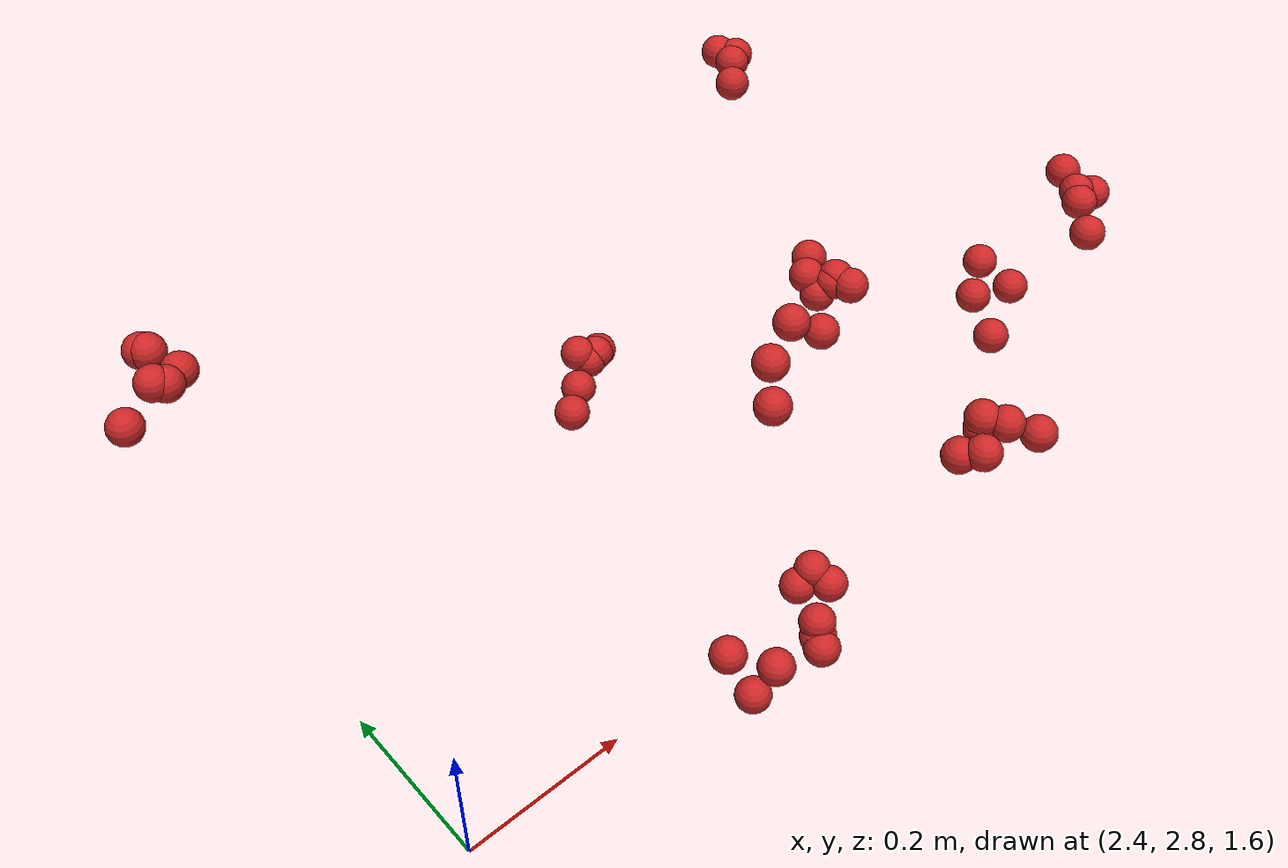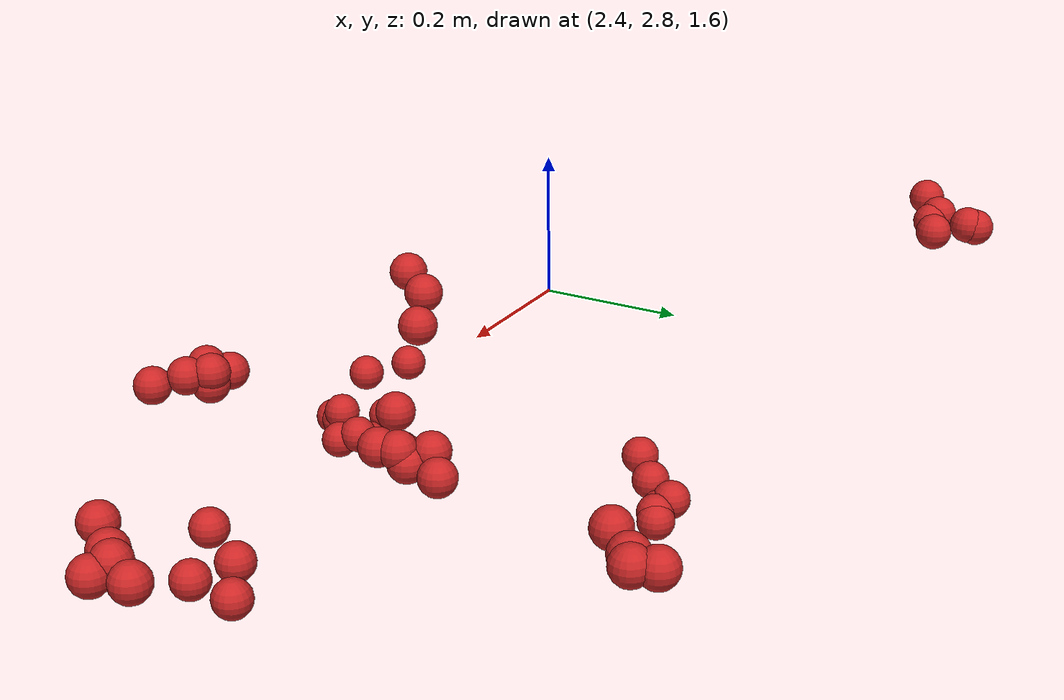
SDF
<sdf version="1.4">
 <model name="fruit_population">
  <static>true</static>
  <link name="fruit_10">
   <pose>2.9140144951566893 2.905246026582781 1.8241018806844693 0 0 0</pose>
   <collision name="fruit_collision_10"><geometry><sphere><radius>0.022</radius></sphere></geometry></collision>
   <visual name="visual">
    <geometry><sphere><radius>0.022</radius></sphere></geometry>
    <material><script><name>Gazebo/Red</name></script></material>
   </visual>
   <inertial>
    <mass>0.05</mass>
    <inertia>
     <ixx>9.679999999999999e-06</ixx>
     <ixy>0.0</ixy>
     <ixz>0.0</ixz>
     <iyy>9.679999999999999e-06</iyy>
     <iyz>0.0</iyz>
     <izz>9.679999999999999e-06</izz>
    </inertia>
   </inertial>
   <sensor name="fruit_contact_10" type="contact">
    <plugin name="contact_plugin_10" filename="libcontact_plugin.so"/>
    <contact><collision>fruit_collision_10</collision><topic>fruit_contact_topic_10</topic></contact>
   </sensor>
  </link>
  <link name="fruit_20">
   <pose>3.0898441492252546 3.0006726805404482 1.7376067044280123 0 0 0</pose>
   <collision name="fruit_collision_20"><geometry><sphere><radius>0.022</radius></sphere></geometry></collision>
   <visual name="visual">
    <geometry><sphere><radius>0.022</radius></sphere></geometry>
    <material><script><name>Gazebo/Red</name></script></material>
   </visual>
   <inertial>
    <mass>0.05</mass>
    <inertia>
     <ixx>9.679999999999999e-06</ixx>
     <ixy>0.0</ixy>
     <ixz>0.0</ixz>
     <iyy>9.679999999999999e-06</iyy>
     <iyz>0.0</iyz>
     <izz>9.679999999999999e-06</izz>
    </inertia>
   </inertial>
   <sensor name="fruit_contact_20" type="contact">
    <plugin name="contact_plugin_20" filename="libcontact_plugin.so"/>
    <contact><collision>fruit_collision_20</collision><topic>fruit_contact_topic_20</topic></contact>
   </sensor>
  </link>
  <link name="fruit_68">
   <pose>3.2950087017767102 2.900373768643816 1.665089980675513 0 0 0</pose>
   <collision name="fruit_collision_68"><geometry><sphere><radius>0.022</radius></sphere></geometry></collision>
   <visual name="visual">
    <geometry><sphere><radius>0.022</radius></sphere></geometry>
    <material><script><name>Gazebo/Red</name></script></material>
   </visual>
   <inertial>
    <mass>0.05</mass>
    <inertia>
     <ixx>9.679999999999999e-06</ixx>
     <ixy>0.0</ixy>
     <ixz>0.0</ixz>
     <iyy>9.679999999999999e-06</iyy>
     <iyz>0.0</iyz>
     <izz>9.679999999999999e-06</izz>
    </inertia>
   </inertial>
   <sensor name="fruit_contact_68" type="contact">
    <plugin name="contact_plugin_68" filename="libcontact_plugin.so"/>
    <contact><collision>fruit_collision_68</collision><topic>fruit_contact_topic_68</topic></contact>
   </sensor>
  </link>
  <link name="fruit_83">
   <pose>2.8420954201485804 3.175677228902239 1.6179164771805494 0 0 0</pose>
   <collision name="fruit_collision_83"><geometry><sphere><radius>0.022</radius></sphere></geometry></collision>
   <visual name="visual">
    <geometry><sphere><radius>0.022</radius></sphere></geometry>
    <material><script><name>Gazebo/Red</name></script></material>
   </visual>
   <inertial>
    <mass>0.05</mass>
    <inertia>
     <ixx>9.679999999999999e-06</ixx>
     <ixy>0.0</ixy>
     <ixz>0.0</ixz>
     <iyy>9.679999999999999e-06</iyy>
     <iyz>0.0</iyz>
     <izz>9.679999999999999e-06</izz>
    </inertia>
   </inertial>
   <sensor name="fruit_contact_83" type="contact">
    <plugin name="contact_plugin_83" filename="libcontact_plugin.so"/>
    <contact><collision>fruit_collision_83</collision><topic>fruit_contact_topic_83</topic></contact>
   </sensor>
  </link>
  <link name="fruit_107">
   <pose>3.4529257955766073 2.8977270658966408 1.7459621050404779 0 0 0</pose>
   <collision name="fruit_collision_107"><geometry><sphere><radius>0.022</radius></sphere></geometry></collision>
   <visual name="visual">
    <geometry><sphere><radius>0.022</radius></sphere></geometry>
    <material><script><name>Gazebo/Red</name></script></material>
   </visual>
   <inertial>
    <mass>0.05</mass>
    <inertia>
     <ixx>9.679999999999999e-06</ixx>
     <ixy>0.0</ixy>
     <ixz>0.0</ixz>
     <iyy>9.679999999999999e-06</iyy>
     <iyz>0.0</iyz>
     <izz>9.679999999999999e-06</izz>
    </inertia>
   </inertial>
   <sensor name="fruit_contact_107" type="contact">
    <plugin name="contact_plugin_107" filename="libcontact_plugin.so"/>
    <contact><collision>fruit_collision_107</collision><topic>fruit_contact_topic_107</topic></contact>
   </sensor>
  </link>
  <link name="fruit_133">
   <pose>2.362033435912725 3.3429292419735304 1.821196112609708 0 0 0</pose>
   <collision name="fruit_collision_133"><geometry><sphere><radius>0.022</radius></sphere></geometry></collision>
   <visual name="visual">
    <geometry><sphere><radius>0.022</radius></sphere></geometry>
    <material><script><name>Gazebo/Red</name></script></material>
   </visual>
   <inertial>
    <mass>0.05</mass>
    <inertia>
     <ixx>9.679999999999999e-06</ixx>
     <ixy>0.0</ixy>
     <ixz>0.0</ixz>
     <iyy>9.679999999999999e-06</iyy>
     <iyz>0.0</iyz>
     <izz>9.679999999999999e-06</izz>
    </inertia>
   </inertial>
   <sensor name="fruit_contact_133" type="contact">
    <plugin name="contact_plugin_133" filename="libcontact_plugin.so"/>
    <contact><collision>fruit_collision_133</collision><topic>fruit_contact_topic_133</topic></contact>
   </sensor>
  </link>
  <link name="fruit_156">
   <pose>3.2790294465330088 3.3693549721379656 1.7799801298312665 0 0 0</pose>
   <collision name="fruit_collision_156"><geometry><sphere><radius>0.022</radius></sphere></geometry></collision>
   <visual name="visual">
    <geometry><sphere><radius>0.022</radius></sphere></geometry>
    <material><script><name>Gazebo/Red</name></script></material>
   </visual>
   <inertial>
    <mass>0.05</mass>
    <inertia>
     <ixx>9.679999999999999e-06</ixx>
     <ixy>0.0</ixy>
     <ixz>0.0</ixz>
     <iyy>9.679999999999999e-06</iyy>
     <iyz>0.0</iyz>
     <izz>9.679999999999999e-06</izz>
    </inertia>
   </inertial>
   <sensor name="fruit_contact_156" type="contact">
    <plugin name="contact_plugin_156" filename="libcontact_plugin.so"/>
    <contact><collision>fruit_collision_156</collision><topic>fruit_contact_topic_156</topic></contact>
   </sensor>
  </link>
  <link name="fruit_200">
   <pose>3.080797771087424 2.7665304108855397 1.732512972001943 0 0 0</pose>
   <collision name="fruit_collision_200"><geometry><sphere><radius>0.022</radius></sphere></geometry></collision>
   <visual name="visual">
    <geometry><sphere><radius>0.022</radius></sphere></geometry>
    <material><script><name>Gazebo/Red</name></script></material>
   </visual>
   <inertial>
    <mass>0.05</mass>
    <inertia>
     <ixx>9.679999999999999e-06</ixx>
     <ixy>0.0</ixy>
     <ixz>0.0</ixz>
     <iyy>9.679999999999999e-06</iyy>
     <iyz>0.0</iyz>
     <izz>9.679999999999999e-06</izz>
    </inertia>
   </inertial>
   <sensor name="fruit_contact_200" type="contact">
    <plugin name="contact_plugin_200" filename="libcontact_plugin.so"/>
    <contact><collision>fruit_collision_200</collision><topic>fruit_contact_topic_200</topic></contact>
   </sensor>
  </link>
  <link name="fruit_205">
   <pose>2.935476633555447 3.243234836119311 1.6022618831357802 0 0 0</pose>
   <collision name="fruit_collision_205"><geometry><sphere><radius>0.022</radius></sphere></geometry></collision>
   <visual name="visual">
    <geometry><sphere><radius>0.022</radius></sphere></geometry>
    <material><script><name>Gazebo/Red</name></script></material>
   </visual>
   <inertial>
    <mass>0.05</mass>
    <inertia>
     <ixx>9.679999999999999e-06</ixx>
     <ixy>0.0</ixy>
     <ixz>0.0</ixz>
     <iyy>9.679999999999999e-06</iyy>
     <iyz>0.0</iyz>
     <izz>9.679999999999999e-06</izz>
    </inertia>
   </inertial>
   <sensor name="fruit_contact_205" type="contact">
    <plugin name="contact_plugin_205" filename="libcontact_plugin.so"/>
    <contact><collision>fruit_collision_205</collision><topic>fruit_contact_topic_205</topic></contact>
   </sensor>
  </link>
  <link name="fruit_211">
   <pose>3.127967739637561 2.7779609332926394 1.7514853156689896 0 0 0</pose>
   <collision name="fruit_collision_211"><geometry><sphere><radius>0.022</radius></sphere></geometry></collision>
   <visual name="visual">
    <geometry><sphere><radius>0.022</radius></sphere></geometry>
    <material><script><name>Gazebo/Red</name></script></material>
   </visual>
   <inertial>
    <mass>0.05</mass>
    <inertia>
     <ixx>9.679999999999999e-06</ixx>
     <ixy>0.0</ixy>
     <ixz>0.0</ixz>
     <iyy>9.679999999999999e-06</iyy>
     <iyz>0.0</iyz>
     <izz>9.679999999999999e-06</izz>
    </inertia>
   </inertial>
   <sensor name="fruit_contact_211" type="contact">
    <plugin name="contact_plugin_211" filename="libcontact_plugin.so"/>
    <contact><collision>fruit_collision_211</collision><topic>fruit_contact_topic_211</topic></contact>
   </sensor>
  </link>
  <link name="fruit_214">
   <pose>2.452603941493797 3.3853979938809085 1.8100742727380073 0 0 0</pose>
   <collision name="fruit_collision_214"><geometry><sphere><radius>0.022</radius></sphere></geometry></collision>
   <visual name="visual">
    <geometry><sphere><radius>0.022</radius></sphere></geometry>
    <material><script><name>Gazebo/Red</name></script></material>
   </visual>
   <inertial>
    <mass>0.05</mass>
    <inertia>
     <ixx>9.679999999999999e-06</ixx>
     <ixy>0.0</ixy>
     <ixz>0.0</ixz>
     <iyy>9.679999999999999e-06</iyy>
     <iyz>0.0</iyz>
     <izz>9.679999999999999e-06</izz>
    </inertia>
   </inertial>
   <sensor name="fruit_contact_214" type="contact">
    <plugin name="contact_plugin_214" filename="libcontact_plugin.so"/>
    <contact><collision>fruit_collision_214</collision><topic>fruit_contact_topic_214</topic></contact>
   </sensor>
  </link>
  <link name="fruit_232">
   <pose>3.1758163642686963 3.109713180910813 1.7216191462952584 0 0 0</pose>
   <collision name="fruit_collision_232"><geometry><sphere><radius>0.022</radius></sphere></geometry></collision>
   <visual name="visual">
    <geometry><sphere><radius>0.022</radius></sphere></geometry>
    <material><script><name>Gazebo/Red</name></script></material>
   </visual>
   <inertial>
    <mass>0.05</mass>
    <inertia>
     <ixx>9.679999999999999e-06</ixx>
     <ixy>0.0</ixy>
     <ixz>0.0</ixz>
     <iyy>9.679999999999999e-06</iyy>
     <iyz>0.0</iyz>
     <izz>9.679999999999999e-06</izz>
    </inertia>
   </inertial>
   <sensor name="fruit_contact_232" type="contact">
    <plugin name="contact_plugin_232" filename="libcontact_plugin.so"/>
    <contact><collision>fruit_collision_232</collision><topic>fruit_contact_topic_232</topic></contact>
   </sensor>
  </link>
  <link name="fruit_233">
   <pose>3.5211194494637494 2.995443114675061 1.740234323698659 0 0 0</pose>
   <collision name="fruit_collision_233"><geometry><sphere><radius>0.022</radius></sphere></geometry></collision>
   <visual name="visual">
    <geometry><sphere><radius>0.022</radius></sphere></geometry>
    <material><script><name>Gazebo/Red</name></script></material>
   </visual>
   <inertial>
    <mass>0.05</mass>
    <inertia>
     <ixx>9.679999999999999e-06</ixx>
     <ixy>0.0</ixy>
     <ixz>0.0</ixz>
     <iyy>9.679999999999999e-06</iyy>
     <iyz>0.0</iyz>
     <izz>9.679999999999999e-06</izz>
    </inertia>
   </inertial>
   <sensor name="fruit_contact_233" type="contact">
    <plugin name="contact_plugin_233" filename="libcontact_plugin.so"/>
    <contact><collision>fruit_collision_233</collision><topic>fruit_contact_topic_233</topic></contact>
   </sensor>
  </link>
  <link name="fruit_236">
   <pose>3.144479487791867 3.082540602792172 1.7323389013804935 0 0 0</pose>
   <collision name="fruit_collision_236"><geometry><sphere><radius>0.022</radius></sphere></geometry></collision>
   <visual name="visual">
    <geometry><sphere><radius>0.022</radius></sphere></geometry>
    <material><script><name>Gazebo/Red</name></script></material>
   </visual>
   <inertial>
    <mass>0.05</mass>
    <inertia>
     <ixx>9.679999999999999e-06</ixx>
     <ixy>0.0</ixy>
     <ixz>0.0</ixz>
     <iyy>9.679999999999999e-06</iyy>
     <iyz>0.0</iyz>
     <izz>9.679999999999999e-06</izz>
    </inertia>
   </inertial>
   <sensor name="fruit_contact_236" type="contact">
    <plugin name="contact_plugin_236" filename="libcontact_plugin.so"/>
    <contact><collision>fruit_collision_236</collision><topic>fruit_contact_topic_236</topic></contact>
   </sensor>
  </link>
  <link name="fruit_237">
   <pose>3.143146770329025 3.060728649599986 1.7179057275547984 0 0 0</pose>
   <collision name="fruit_collision_237"><geometry><sphere><radius>0.022</radius></sphere></geometry></collision>
   <visual name="visual">
    <geometry><sphere><radius>0.022</radius></sphere></geometry>
    <material><script><name>Gazebo/Red</name></script></material>
   </visual>
   <inertial>
    <mass>0.05</mass>
    <inertia>
     <ixx>9.679999999999999e-06</ixx>
     <ixy>0.0</ixy>
     <ixz>0.0</ixz>
     <iyy>9.679999999999999e-06</iyy>
     <iyz>0.0</iyz>
     <izz>9.679999999999999e-06</izz>
    </inertia>
   </inertial>
   <sensor name="fruit_contact_237" type="contact">
    <plugin name="contact_plugin_237" filename="libcontact_plugin.so"/>
    <contact><collision>fruit_collision_237</collision><topic>fruit_contact_topic_237</topic></contact>
   </sensor>
  </link>
  <link name="fruit_280">
   <pose>3.170629525966341 3.032256327298769 1.736465565389224 0 0 0</pose>
   <collision name="fruit_collision_280"><geometry><sphere><radius>0.022</radius></sphere></geometry></collision>
   <visual name="visual">
    <geometry><sphere><radius>0.022</radius></sphere></geometry>
    <material><script><name>Gazebo/Red</name></script></material>
   </visual>
   <inertial>
    <mass>0.05</mass>
    <inertia>
     <ixx>9.679999999999999e-06</ixx>
     <ixy>0.0</ixy>
     <ixz>0.0</ixz>
     <iyy>9.679999999999999e-06</iyy>
     <iyz>0.0</iyz>
     <izz>9.679999999999999e-06</izz>
    </inertia>
   </inertial>
   <sensor name="fruit_contact_280" type="contact">
    <plugin name="contact_plugin_280" filename="libcontact_plugin.so"/>
    <contact><collision>fruit_collision_280</collision><topic>fruit_contact_topic_280</topic></contact>
   </sensor>
  </link>
  <link name="fruit_306">
   <pose>3.022553675807514 2.9887041576275637 1.8122762410525313 0 0 0</pose>
   <collision name="fruit_collision_306"><geometry><sphere><radius>0.022</radius></sphere></geometry></collision>
   <visual name="visual">
    <geometry><sphere><radius>0.022</radius></sphere></geometry>
    <material><script><name>Gazebo/Red</name></script></material>
   </visual>
   <inertial>
    <mass>0.05</mass>
    <inertia>
     <ixx>9.679999999999999e-06</ixx>
     <ixy>0.0</ixy>
     <ixz>0.0</ixz>
     <iyy>9.679999999999999e-06</iyy>
     <iyz>0.0</iyz>
     <izz>9.679999999999999e-06</izz>
    </inertia>
   </inertial>
   <sensor name="fruit_contact_306" type="contact">
    <plugin name="contact_plugin_306" filename="libcontact_plugin.so"/>
    <contact><collision>fruit_collision_306</collision><topic>fruit_contact_topic_306</topic></contact>
   </sensor>
  </link>
  <link name="fruit_308">
   <pose>2.7534349780688596 2.7909564387254813 1.621023957650253 0 0 0</pose>
   <collision name="fruit_collision_308"><geometry><sphere><radius>0.022</radius></sphere></geometry></collision>
   <visual name="visual">
    <geometry><sphere><radius>0.022</radius></sphere></geometry>
    <material><script><name>Gazebo/Red</name></script></material>
   </visual>
   <inertial>
    <mass>0.05</mass>
    <inertia>
     <ixx>9.679999999999999e-06</ixx>
     <ixy>0.0</ixy>
     <ixz>0.0</ixz>
     <iyy>9.679999999999999e-06</iyy>
     <iyz>0.0</iyz>
     <izz>9.679999999999999e-06</izz>
    </inertia>
   </inertial>
   <sensor name="fruit_contact_308" type="contact">
    <plugin name="contact_plugin_308" filename="libcontact_plugin.so"/>
    <contact><collision>fruit_collision_308</collision><topic>fruit_contact_topic_308</topic></contact>
   </sensor>
  </link>
  <link name="fruit_321">
   <pose>2.956694126129255 2.953865894454527 1.8217331375314074 0 0 0</pose>
   <collision name="fruit_collision_321"><geometry><sphere><radius>0.022</radius></sphere></geometry></collision>
   <visual name="visual">
    <geometry><sphere><radius>0.022</radius></sphere></geometry>
    <material><script><name>Gazebo/Red</name></script></material>
   </visual>
   <inertial>
    <mass>0.05</mass>
    <inertia>
     <ixx>9.679999999999999e-06</ixx>
     <ixy>0.0</ixy>
     <ixz>0.0</ixz>
     <iyy>9.679999999999999e-06</iyy>
     <iyz>0.0</iyz>
     <izz>9.679999999999999e-06</izz>
    </inertia>
   </inertial>
   <sensor name="fruit_contact_321" type="contact">
    <plugin name="contact_plugin_321" filename="libcontact_plugin.so"/>
    <contact><collision>fruit_collision_321</collision><topic>fruit_contact_topic_321</topic></contact>
   </sensor>
  </link>
  <link name="fruit_327">
   <pose>3.097351917559545 2.7464701360229613 1.742855501991092 0 0 0</pose>
   <collision name="fruit_collision_327"><geometry><sphere><radius>0.022</radius></sphere></geometry></collision>
   <visual name="visual">
    <geometry><sphere><radius>0.022</radius></sphere></geometry>
    <material><script><name>Gazebo/Red</name></script></material>
   </visual>
   <inertial>
    <mass>0.05</mass>
    <inertia>
     <ixx>9.679999999999999e-06</ixx>
     <ixy>0.0</ixy>
     <ixz>0.0</ixz>
     <iyy>9.679999999999999e-06</iyy>
     <iyz>0.0</iyz>
     <izz>9.679999999999999e-06</izz>
    </inertia>
   </inertial>
   <sensor name="fruit_contact_327" type="contact">
    <plugin name="contact_plugin_327" filename="libcontact_plugin.so"/>
    <contact><collision>fruit_collision_327</collision><topic>fruit_contact_topic_327</topic></contact>
   </sensor>
  </link>
  <link name="fruit_375">
   <pose>2.872079595285109 2.768113470854476 1.5947824265434352 0 0 0</pose>
   <collision name="fruit_collision_375"><geometry><sphere><radius>0.022</radius></sphere></geometry></collision>
   <visual name="visual">
    <geometry><sphere><radius>0.022</radius></sphere></geometry>
    <material><script><name>Gazebo/Red</name></script></material>
   </visual>
   <inertial>
    <mass>0.05</mass>
    <inertia>
     <ixx>9.679999999999999e-06</ixx>
     <ixy>0.0</ixy>
     <ixz>0.0</ixz>
     <iyy>9.679999999999999e-06</iyy>
     <iyz>0.0</iyz>
     <izz>9.679999999999999e-06</izz>
    </inertia>
   </inertial>
   <sensor name="fruit_contact_375" type="contact">
    <plugin name="contact_plugin_375" filename="libcontact_plugin.so"/>
    <contact><collision>fruit_collision_375</collision><topic>fruit_contact_topic_375</topic></contact>
   </sensor>
  </link>
  <link name="fruit_378">
   <pose>2.8664320339020177 2.75936660708452 1.5799028151731846 0 0 0</pose>
   <collision name="fruit_collision_378"><geometry><sphere><radius>0.022</radius></sphere></geometry></collision>
   <visual name="visual">
    <geometry><sphere><radius>0.022</radius></sphere></geometry>
    <material><script><name>Gazebo/Red</name></script></material>
   </visual>
   <inertial>
    <mass>0.05</mass>
    <inertia>
     <ixx>9.679999999999999e-06</ixx>
     <ixy>0.0</ixy>
     <ixz>0.0</ixz>
     <iyy>9.679999999999999e-06</iyy>
     <iyz>0.0</iyz>
     <izz>9.679999999999999e-06</izz>
    </inertia>
   </inertial>
   <sensor name="fruit_contact_378" type="contact">
    <plugin name="contact_plugin_378" filename="libcontact_plugin.so"/>
    <contact><collision>fruit_collision_378</collision><topic>fruit_contact_topic_378</topic></contact>
   </sensor>
  </link>
  <link name="fruit_397">
   <pose>3.144407266936085 2.755585762841308 1.7487255881485326 0 0 0</pose>
   <collision name="fruit_collision_397"><geometry><sphere><radius>0.022</radius></sphere></geometry></collision>
   <visual name="visual">
    <geometry><sphere><radius>0.022</radius></sphere></geometry>
    <material><script><name>Gazebo/Red</name></script></material>
   </visual>
   <inertial>
    <mass>0.05</mass>
    <inertia>
     <ixx>9.679999999999999e-06</ixx>
     <ixy>0.0</ixy>
     <ixz>0.0</ixz>
     <iyy>9.679999999999999e-06</iyy>
     <iyz>0.0</iyz>
     <izz>9.679999999999999e-06</izz>
    </inertia>
   </inertial>
   <sensor name="fruit_contact_397" type="contact">
    <plugin name="contact_plugin_397" filename="libcontact_plugin.so"/>
    <contact><collision>fruit_collision_397</collision><topic>fruit_contact_topic_397</topic></contact>
   </sensor>
  </link>
  <link name="fruit_408">
   <pose>3.489133133854417 2.941618307858034 1.7444405958733205 0 0 0</pose>
   <collision name="fruit_collision_408"><geometry><sphere><radius>0.022</radius></sphere></geometry></collision>
   <visual name="visual">
    <geometry><sphere><radius>0.022</radius></sphere></geometry>
    <material><script><name>Gazebo/Red</name></script></material>
   </visual>
   <inertial>
    <mass>0.05</mass>
    <inertia>
     <ixx>9.679999999999999e-06</ixx>
     <ixy>0.0</ixy>
     <ixz>0.0</ixz>
     <iyy>9.679999999999999e-06</iyy>
     <iyz>0.0</iyz>
     <izz>9.679999999999999e-06</izz>
    </inertia>
   </inertial>
   <sensor name="fruit_contact_408" type="contact">
    <plugin name="contact_plugin_408" filename="libcontact_plugin.so"/>
    <contact><collision>fruit_collision_408</collision><topic>fruit_contact_topic_408</topic></contact>
   </sensor>
  </link>
  <link name="fruit_416">
   <pose>3.333135017560095 2.964121209680803 1.6602616928980347 0 0 0</pose>
   <collision name="fruit_collision_416"><geometry><sphere><radius>0.022</radius></sphere></geometry></collision>
   <visual name="visual">
    <geometry><sphere><radius>0.022</radius></sphere></geometry>
    <material><script><name>Gazebo/Red</name></script></material>
   </visual>
   <inertial>
    <mass>0.05</mass>
    <inertia>
     <ixx>9.679999999999999e-06</ixx>
     <ixy>0.0</ixy>
     <ixz>0.0</ixz>
     <iyy>9.679999999999999e-06</iyy>
     <iyz>0.0</iyz>
     <izz>9.679999999999999e-06</izz>
    </inertia>
   </inertial>
   <sensor name="fruit_contact_416" type="contact">
    <plugin name="contact_plugin_416" filename="libcontact_plugin.so"/>
    <contact><collision>fruit_collision_416</collision><topic>fruit_contact_topic_416</topic></contact>
   </sensor>
  </link>
  <link name="fruit_436">
   <pose>3.523450206589684 2.9475278973495804 1.735066649042872 0 0 0</pose>
   <collision name="fruit_collision_436"><geometry><sphere><radius>0.022</radius></sphere></geometry></collision>
   <visual name="visual">
    <geometry><sphere><radius>0.022</radius></sphere></geometry>
    <material><script><name>Gazebo/Red</name></script></material>
   </visual>
   <inertial>
    <mass>0.05</mass>
    <inertia>
     <ixx>9.679999999999999e-06</ixx>
     <ixy>0.0</ixy>
     <ixz>0.0</ixz>
     <iyy>9.679999999999999e-06</iyy>
     <iyz>0.0</iyz>
     <izz>9.679999999999999e-06</izz>
    </inertia>
   </inertial>
   <sensor name="fruit_contact_436" type="contact">
    <plugin name="contact_plugin_436" filename="libcontact_plugin.so"/>
    <contact><collision>fruit_collision_436</collision><topic>fruit_contact_topic_436</topic></contact>
   </sensor>
  </link>
  <link name="fruit_450">
   <pose>3.1604262928111524 3.0543891871822684 1.7319900647928577 0 0 0</pose>
   <collision name="fruit_collision_450"><geometry><sphere><radius>0.022</radius></sphere></geometry></collision>
   <visual name="visual">
    <geometry><sphere><radius>0.022</radius></sphere></geometry>
    <material><script><name>Gazebo/Red</name></script></material>
   </visual>
   <inertial>
    <mass>0.05</mass>
    <inertia>
     <ixx>9.679999999999999e-06</ixx>
     <ixy>0.0</ixy>
     <ixz>0.0</ixz>
     <iyy>9.679999999999999e-06</iyy>
     <iyz>0.0</iyz>
     <izz>9.679999999999999e-06</izz>
    </inertia>
   </inertial>
   <sensor name="fruit_contact_450" type="contact">
    <plugin name="contact_plugin_450" filename="libcontact_plugin.so"/>
    <contact><collision>fruit_collision_450</collision><topic>fruit_contact_topic_450</topic></contact>
   </sensor>
  </link>
  <link name="fruit_465">
   <pose>2.943962347466262 3.2481813957935524 1.5971211233583762 0 0 0</pose>
   <collision name="fruit_collision_465"><geometry><sphere><radius>0.022</radius></sphere></geometry></collision>
   <visual name="visual">
    <geometry><sphere><radius>0.022</radius></sphere></geometry>
    <material><script><name>Gazebo/Red</name></script></material>
   </visual>
   <inertial>
    <mass>0.05</mass>
    <inertia>
     <ixx>9.679999999999999e-06</ixx>
     <ixy>0.0</ixy>
     <ixz>0.0</ixz>
     <iyy>9.679999999999999e-06</iyy>
     <iyz>0.0</iyz>
     <izz>9.679999999999999e-06</izz>
    </inertia>
   </inertial>
   <sensor name="fruit_contact_465" type="contact">
    <plugin name="contact_plugin_465" filename="libcontact_plugin.so"/>
    <contact><collision>fruit_collision_465</collision><topic>fruit_contact_topic_465</topic></contact>
   </sensor>
  </link>
  <link name="fruit_493">
   <pose>2.436826860747151 3.4235387227265375 1.820561861365577 0 0 0</pose>
   <collision name="fruit_collision_493"><geometry><sphere><radius>0.022</radius></sphere></geometry></collision>
   <visual name="visual">
    <geometry><sphere><radius>0.022</radius></sphere></geometry>
    <material><script><name>Gazebo/Red</name></script></material>
   </visual>
   <inertial>
    <mass>0.05</mass>
    <inertia>
     <ixx>9.679999999999999e-06</ixx>
     <ixy>0.0</ixy>
     <ixz>0.0</ixz>
     <iyy>9.679999999999999e-06</iyy>
     <iyz>0.0</iyz>
     <izz>9.679999999999999e-06</izz>
    </inertia>
   </inertial>
   <sensor name="fruit_contact_493" type="contact">
    <plugin name="contact_plugin_493" filename="libcontact_plugin.so"/>
    <contact><collision>fruit_collision_493</collision><topic>fruit_contact_topic_493</topic></contact>
   </sensor>
  </link>
  <link name="fruit_519">
   <pose>2.4169803516048805 3.3784261323374833 1.8210627502552188 0 0 0</pose>
   <collision name="fruit_collision_519"><geometry><sphere><radius>0.022</radius></sphere></geometry></collision>
   <visual name="visual">
    <geometry><sphere><radius>0.022</radius></sphere></geometry>
    <material><script><name>Gazebo/Red</name></script></material>
   </visual>
   <inertial>
    <mass>0.05</mass>
    <inertia>
     <ixx>9.679999999999999e-06</ixx>
     <ixy>0.0</ixy>
     <ixz>0.0</ixz>
     <iyy>9.679999999999999e-06</iyy>
     <iyz>0.0</iyz>
     <izz>9.679999999999999e-06</izz>
    </inertia>
   </inertial>
   <sensor name="fruit_contact_519" type="contact">
    <plugin name="contact_plugin_519" filename="libcontact_plugin.so"/>
    <contact><collision>fruit_collision_519</collision><topic>fruit_contact_topic_519</topic></contact>
   </sensor>
  </link>
  <link name="fruit_521">
   <pose>3.126378667570813 2.775048888563298 1.7357082406921056 0 0 0</pose>
   <collision name="fruit_collision_521"><geometry><sphere><radius>0.022</radius></sphere></geometry></collision>
   <visual name="visual">
    <geometry><sphere><radius>0.022</radius></sphere></geometry>
    <material><script><name>Gazebo/Red</name></script></material>
   </visual>
   <inertial>
    <mass>0.05</mass>
    <inertia>
     <ixx>9.679999999999999e-06</ixx>
     <ixy>0.0</ixy>
     <ixz>0.0</ixz>
     <iyy>9.679999999999999e-06</iyy>
     <iyz>0.0</iyz>
     <izz>9.679999999999999e-06</izz>
    </inertia>
   </inertial>
   <sensor name="fruit_contact_521" type="contact">
    <plugin name="contact_plugin_521" filename="libcontact_plugin.so"/>
    <contact><collision>fruit_collision_521</collision><topic>fruit_contact_topic_521</topic></contact>
   </sensor>
  </link>
  <link name="fruit_524">
   <pose>2.859635976650725 2.746072186243088 1.578221911984925 0 0 0</pose>
   <collision name="fruit_collision_524"><geometry><sphere><radius>0.022</radius></sphere></geometry></collision>
   <visual name="visual">
    <geometry><sphere><radius>0.022</radius></sphere></geometry>
    <material><script><name>Gazebo/Red</name></script></material>
   </visual>
   <inertial>
    <mass>0.05</mass>
    <inertia>
     <ixx>9.679999999999999e-06</ixx>
     <ixy>0.0</ixy>
     <ixz>0.0</ixz>
     <iyy>9.679999999999999e-06</iyy>
     <iyz>0.0</iyz>
     <izz>9.679999999999999e-06</izz>
    </inertia>
   </inertial>
   <sensor name="fruit_contact_524" type="contact">
    <plugin name="contact_plugin_524" filename="libcontact_plugin.so"/>
    <contact><collision>fruit_collision_524</collision><topic>fruit_contact_topic_524</topic></contact>
   </sensor>
  </link>
  <link name="fruit_526">
   <pose>2.7714955847132354 2.76452379184572 1.5480833213641638 0 0 0</pose>
   <collision name="fruit_collision_526"><geometry><sphere><radius>0.022</radius></sphere></geometry></collision>
   <visual name="visual">
    <geometry><sphere><radius>0.022</radius></sphere></geometry>
    <material><script><name>Gazebo/Red</name></script></material>
   </visual>
   <inertial>
    <mass>0.05</mass>
    <inertia>
     <ixx>9.679999999999999e-06</ixx>
     <ixy>0.0</ixy>
     <ixz>0.0</ixz>
     <iyy>9.679999999999999e-06</iyy>
     <iyz>0.0</iyz>
     <izz>9.679999999999999e-06</izz>
    </inertia>
   </inertial>
   <sensor name="fruit_contact_526" type="contact">
    <plugin name="contact_plugin_526" filename="libcontact_plugin.so"/>
    <contact><collision>fruit_collision_526</collision><topic>fruit_contact_topic_526</topic></contact>
   </sensor>
  </link>
  <link name="fruit_559">
   <pose>2.9242054195398617 2.8005928820195587 1.5854405308502653 0 0 0</pose>
   <collision name="fruit_collision_559"><geometry><sphere><radius>0.022</radius></sphere></geometry></collision>
   <visual name="visual">
    <geometry><sphere><radius>0.022</radius></sphere></geometry>
    <material><script><name>Gazebo/Red</name></script></material>
   </visual>
   <inertial>
    <mass>0.05</mass>
    <inertia>
     <ixx>9.679999999999999e-06</ixx>
     <ixy>0.0</ixy>
     <ixz>0.0</ixz>
     <iyy>9.679999999999999e-06</iyy>
     <iyz>0.0</iyz>
     <izz>9.679999999999999e-06</izz>
    </inertia>
   </inertial>
   <sensor name="fruit_contact_559" type="contact">
    <plugin name="contact_plugin_559" filename="libcontact_plugin.so"/>
    <contact><collision>fruit_collision_559</collision><topic>fruit_contact_topic_559</topic></contact>
   </sensor>
  </link>
  <link name="fruit_599">
   <pose>2.432247606772274 3.431991065784248 1.8175553913017461 0 0 0</pose>
   <collision name="fruit_collision_599"><geometry><sphere><radius>0.022</radius></sphere></geometry></collision>
   <visual name="visual">
    <geometry><sphere><radius>0.022</radius></sphere></geometry>
    <material><script><name>Gazebo/Red</name></script></material>
   </visual>
   <inertial>
    <mass>0.05</mass>
    <inertia>
     <ixx>9.679999999999999e-06</ixx>
     <ixy>0.0</ixy>
     <ixz>0.0</ixz>
     <iyy>9.679999999999999e-06</iyy>
     <iyz>0.0</iyz>
     <izz>9.679999999999999e-06</izz>
    </inertia>
   </inertial>
   <sensor name="fruit_contact_599" type="contact">
    <plugin name="contact_plugin_599" filename="libcontact_plugin.so"/>
    <contact><collision>fruit_collision_599</collision><topic>fruit_contact_topic_599</topic></contact>
   </sensor>
  </link>
  <link name="fruit_600">
   <pose>3.3821384292120165 2.9451210794788643 1.65869887762032 0 0 0</pose>
   <collision name="fruit_collision_600"><geometry><sphere><radius>0.022</radius></sphere></geometry></collision>
   <visual name="visual">
    <geometry><sphere><radius>0.022</radius></sphere></geometry>
    <material><script><name>Gazebo/Red</name></script></material>
   </visual>
   <inertial>
    <mass>0.05</mass>
    <inertia>
     <ixx>9.679999999999999e-06</ixx>
     <ixy>0.0</ixy>
     <ixz>0.0</ixz>
     <iyy>9.679999999999999e-06</iyy>
     <iyz>0.0</iyz>
     <izz>9.679999999999999e-06</izz>
    </inertia>
   </inertial>
   <sensor name="fruit_contact_600" type="contact">
    <plugin name="contact_plugin_600" filename="libcontact_plugin.so"/>
    <contact><collision>fruit_collision_600</collision><topic>fruit_contact_topic_600</topic></contact>
   </sensor>
  </link>
  <link name="fruit_606">
   <pose>2.788085882455335 2.7486262109516812 1.611263935629812 0 0 0</pose>
   <collision name="fruit_collision_606"><geometry><sphere><radius>0.022</radius></sphere></geometry></collision>
   <visual name="visual">
    <geometry><sphere><radius>0.022</radius></sphere></geometry>
    <material><script><name>Gazebo/Red</name></script></material>
   </visual>
   <inertial>
    <mass>0.05</mass>
    <inertia>
     <ixx>9.679999999999999e-06</ixx>
     <ixy>0.0</ixy>
     <ixz>0.0</ixz>
     <iyy>9.679999999999999e-06</iyy>
     <iyz>0.0</iyz>
     <izz>9.679999999999999e-06</izz>
    </inertia>
   </inertial>
   <sensor name="fruit_contact_606" type="contact">
    <plugin name="contact_plugin_606" filename="libcontact_plugin.so"/>
    <contact><collision>fruit_collision_606</collision><topic>fruit_contact_topic_606</topic></contact>
   </sensor>
  </link>
  <link name="fruit_622">
   <pose>2.8780570741378346 3.20774451766001 1.6094567559574107 0 0 0</pose>
   <collision name="fruit_collision_622"><geometry><sphere><radius>0.022</radius></sphere></geometry></collision>
   <visual name="visual">
    <geometry><sphere><radius>0.022</radius></sphere></geometry>
    <material><script><name>Gazebo/Red</name></script></material>
   </visual>
   <inertial>
    <mass>0.05</mass>
    <inertia>
     <ixx>9.679999999999999e-06</ixx>
     <ixy>0.0</ixy>
     <ixz>0.0</ixz>
     <iyy>9.679999999999999e-06</iyy>
     <iyz>0.0</iyz>
     <izz>9.679999999999999e-06</izz>
    </inertia>
   </inertial>
   <sensor name="fruit_contact_622" type="contact">
    <plugin name="contact_plugin_622" filename="libcontact_plugin.so"/>
    <contact><collision>fruit_collision_622</collision><topic>fruit_contact_topic_622</topic></contact>
   </sensor>
  </link>
  <link name="fruit_643">
   <pose>2.9179417578138267 2.8240964145229612 1.5954560930940072 0 0 0</pose>
   <collision name="fruit_collision_643"><geometry><sphere><radius>0.022</radius></sphere></geometry></collision>
   <visual name="visual">
    <geometry><sphere><radius>0.022</radius></sphere></geometry>
    <material><script><name>Gazebo/Red</name></script></material>
   </visual>
   <inertial>
    <mass>0.05</mass>
    <inertia>
     <ixx>9.679999999999999e-06</ixx>
     <ixy>0.0</ixy>
     <ixz>0.0</ixz>
     <iyy>9.679999999999999e-06</iyy>
     <iyz>0.0</iyz>
     <izz>9.679999999999999e-06</izz>
    </inertia>
   </inertial>
   <sensor name="fruit_contact_643" type="contact">
    <plugin name="contact_plugin_643" filename="libcontact_plugin.so"/>
    <contact><collision>fruit_collision_643</collision><topic>fruit_contact_topic_643</topic></contact>
   </sensor>
  </link>
  <link name="fruit_658">
   <pose>3.164867827496314 3.064430124481375 1.7221987627546336 0 0 0</pose>
   <collision name="fruit_collision_658"><geometry><sphere><radius>0.022</radius></sphere></geometry></collision>
   <visual name="visual">
    <geometry><sphere><radius>0.022</radius></sphere></geometry>
    <material><script><name>Gazebo/Red</name></script></material>
   </visual>
   <inertial>
    <mass>0.05</mass>
    <inertia>
     <ixx>9.679999999999999e-06</ixx>
     <ixy>0.0</ixy>
     <ixz>0.0</ixz>
     <iyy>9.679999999999999e-06</iyy>
     <iyz>0.0</iyz>
     <izz>9.679999999999999e-06</izz>
    </inertia>
   </inertial>
   <sensor name="fruit_contact_658" type="contact">
    <plugin name="contact_plugin_658" filename="libcontact_plugin.so"/>
    <contact><collision>fruit_collision_658</collision><topic>fruit_contact_topic_658</topic></contact>
   </sensor>
  </link>
  <link name="fruit_674">
   <pose>3.3142562595483698 3.4363171730464 1.7731859187356778 0 0 0</pose>
   <collision name="fruit_collision_674"><geometry><sphere><radius>0.022</radius></sphere></geometry></collision>
   <visual name="visual">
    <geometry><sphere><radius>0.022</radius></sphere></geometry>
    <material><script><name>Gazebo/Red</name></script></material>
   </visual>
   <inertial>
    <mass>0.05</mass>
    <inertia>
     <ixx>9.679999999999999e-06</ixx>
     <ixy>0.0</ixy>
     <ixz>0.0</ixz>
     <iyy>9.679999999999999e-06</iyy>
     <iyz>0.0</iyz>
     <izz>9.679999999999999e-06</izz>
    </inertia>
   </inertial>
   <sensor name="fruit_contact_674" type="contact">
    <plugin name="contact_plugin_674" filename="libcontact_plugin.so"/>
    <contact><collision>fruit_collision_674</collision><topic>fruit_contact_topic_674</topic></contact>
   </sensor>
  </link>
  <link name="fruit_734">
   <pose>2.429469510305319 3.3731956561704344 1.8148614299046661 0 0 0</pose>
   <collision name="fruit_collision_734"><geometry><sphere><radius>0.022</radius></sphere></geometry></collision>
   <visual name="visual">
    <geometry><sphere><radius>0.022</radius></sphere></geometry>
    <material><script><name>Gazebo/Red</name></script></material>
   </visual>
   <inertial>
    <mass>0.05</mass>
    <inertia>
     <ixx>9.679999999999999e-06</ixx>
     <ixy>0.0</ixy>
     <ixz>0.0</ixz>
     <iyy>9.679999999999999e-06</iyy>
     <iyz>0.0</iyz>
     <izz>9.679999999999999e-06</izz>
    </inertia>
   </inertial>
   <sensor name="fruit_contact_734" type="contact">
    <plugin name="contact_plugin_734" filename="libcontact_plugin.so"/>
    <contact><collision>fruit_collision_734</collision><topic>fruit_contact_topic_734</topic></contact>
   </sensor>
  </link>
  <link name="fruit_741">
   <pose>2.896543543480573 2.824959712106355 1.5804523499580596 0 0 0</pose>
   <collision name="fruit_collision_741"><geometry><sphere><radius>0.022</radius></sphere></geometry></collision>
   <visual name="visual">
    <geometry><sphere><radius>0.022</radius></sphere></geometry>
    <material><script><name>Gazebo/Red</name></script></material>
   </visual>
   <inertial>
    <mass>0.05</mass>
    <inertia>
     <ixx>9.679999999999999e-06</ixx>
     <ixy>0.0</ixy>
     <ixz>0.0</ixz>
     <iyy>9.679999999999999e-06</iyy>
     <iyz>0.0</iyz>
     <izz>9.679999999999999e-06</izz>
    </inertia>
   </inertial>
   <sensor name="fruit_contact_741" type="contact">
    <plugin name="contact_plugin_741" filename="libcontact_plugin.so"/>
    <contact><collision>fruit_collision_741</collision><topic>fruit_contact_topic_741</topic></contact>
   </sensor>
  </link>
  <link name="fruit_744">
   <pose>2.9215287059725243 3.240925127820776 1.5998604841297246 0 0 0</pose>
   <collision name="fruit_collision_744"><geometry><sphere><radius>0.022</radius></sphere></geometry></collision>
   <visual name="visual">
    <geometry><sphere><radius>0.022</radius></sphere></geometry>
    <material><script><name>Gazebo/Red</name></script></material>
   </visual>
   <inertial>
    <mass>0.05</mass>
    <inertia>
     <ixx>9.679999999999999e-06</ixx>
     <ixy>0.0</ixy>
     <ixz>0.0</ixz>
     <iyy>9.679999999999999e-06</iyy>
     <iyz>0.0</iyz>
     <izz>9.679999999999999e-06</izz>
    </inertia>
   </inertial>
   <sensor name="fruit_contact_744" type="contact">
    <plugin name="contact_plugin_744" filename="libcontact_plugin.so"/>
    <contact><collision>fruit_collision_744</collision><topic>fruit_contact_topic_744</topic></contact>
   </sensor>
  </link>
  <link name="fruit_755">
   <pose>3.326328632454751 3.413894595748945 1.7756890346065284 0 0 0</pose>
   <collision name="fruit_collision_755"><geometry><sphere><radius>0.022</radius></sphere></geometry></collision>
   <visual name="visual">
    <geometry><sphere><radius>0.022</radius></sphere></geometry>
    <material><script><name>Gazebo/Red</name></script></material>
   </visual>
   <inertial>
    <mass>0.05</mass>
    <inertia>
     <ixx>9.679999999999999e-06</ixx>
     <ixy>0.0</ixy>
     <ixz>0.0</ixz>
     <iyy>9.679999999999999e-06</iyy>
     <iyz>0.0</iyz>
     <izz>9.679999999999999e-06</izz>
    </inertia>
   </inertial>
   <sensor name="fruit_contact_755" type="contact">
    <plugin name="contact_plugin_755" filename="libcontact_plugin.so"/>
    <contact><collision>fruit_collision_755</collision><topic>fruit_contact_topic_755</topic></contact>
   </sensor>
  </link>
  <link name="fruit_764">
   <pose>3.503013025368422 2.9577161124243045 1.743637824585889 0 0 0</pose>
   <collision name="fruit_collision_764"><geometry><sphere><radius>0.022</radius></sphere></geometry></collision>
   <visual name="visual">
    <geometry><sphere><radius>0.022</radius></sphere></geometry>
    <material><script><name>Gazebo/Red</name></script></material>
   </visual>
   <inertial>
    <mass>0.05</mass>
    <inertia>
     <ixx>9.679999999999999e-06</ixx>
     <ixy>0.0</ixy>
     <ixz>0.0</ixz>
     <iyy>9.679999999999999e-06</iyy>
     <iyz>0.0</iyz>
     <izz>9.679999999999999e-06</izz>
    </inertia>
   </inertial>
   <sensor name="fruit_contact_764" type="contact">
    <plugin name="contact_plugin_764" filename="libcontact_plugin.so"/>
    <contact><collision>fruit_collision_764</collision><topic>fruit_contact_topic_764</topic></contact>
   </sensor>
  </link>
  <link name="fruit_786">
   <pose>3.388102746854578 3.002295338750584 1.6560800177780697 0 0 0</pose>
   <collision name="fruit_collision_786"><geometry><sphere><radius>0.022</radius></sphere></geometry></collision>
   <visual name="visual">
    <geometry><sphere><radius>0.022</radius></sphere></geometry>
    <material><script><name>Gazebo/Red</name></script></material>
   </visual>
   <inertial>
    <mass>0.05</mass>
    <inertia>
     <ixx>9.679999999999999e-06</ixx>
     <ixy>0.0</ixy>
     <ixz>0.0</ixz>
     <iyy>9.679999999999999e-06</iyy>
     <iyz>0.0</iyz>
     <izz>9.679999999999999e-06</izz>
    </inertia>
   </inertial>
   <sensor name="fruit_contact_786" type="contact">
    <plugin name="contact_plugin_786" filename="libcontact_plugin.so"/>
    <contact><collision>fruit_collision_786</collision><topic>fruit_contact_topic_786</topic></contact>
   </sensor>
  </link>
  <link name="fruit_787">
   <pose>2.9128602602580647 3.2519129975354604 1.6108402833465059 0 0 0</pose>
   <collision name="fruit_collision_787"><geometry><sphere><radius>0.022</radius></sphere></geometry></collision>
   <visual name="visual">
    <geometry><sphere><radius>0.022</radius></sphere></geometry>
    <material><script><name>Gazebo/Red</name></script></material>
   </visual>
   <inertial>
    <mass>0.05</mass>
    <inertia>
     <ixx>9.679999999999999e-06</ixx>
     <ixy>0.0</ixy>
     <ixz>0.0</ixz>
     <iyy>9.679999999999999e-06</iyy>
     <iyz>0.0</iyz>
     <izz>9.679999999999999e-06</izz>
    </inertia>
   </inertial>
   <sensor name="fruit_contact_787" type="contact">
    <plugin name="contact_plugin_787" filename="libcontact_plugin.so"/>
    <contact><collision>fruit_collision_787</collision><topic>fruit_contact_topic_787</topic></contact>
   </sensor>
  </link>
  <link name="fruit_798">
   <pose>3.1667476555857057 3.0546644180526354 1.736381817165581 0 0 0</pose>
   <collision name="fruit_collision_798"><geometry><sphere><radius>0.022</radius></sphere></geometry></collision>
   <visual name="visual">
    <geometry><sphere><radius>0.022</radius></sphere></geometry>
    <material><script><name>Gazebo/Red</name></script></material>
   </visual>
   <inertial>
    <mass>0.05</mass>
    <inertia>
     <ixx>9.679999999999999e-06</ixx>
     <ixy>0.0</ixy>
     <ixz>0.0</ixz>
     <iyy>9.679999999999999e-06</iyy>
     <iyz>0.0</iyz>
     <izz>9.679999999999999e-06</izz>
    </inertia>
   </inertial>
   <sensor name="fruit_contact_798" type="contact">
    <plugin name="contact_plugin_798" filename="libcontact_plugin.so"/>
    <contact><collision>fruit_collision_798</collision><topic>fruit_contact_topic_798</topic></contact>
   </sensor>
  </link>
  <link name="fruit_803">
   <pose>3.3106445562658986 3.404467382001776 1.777157978928261 0 0 0</pose>
   <collision name="fruit_collision_803"><geometry><sphere><radius>0.022</radius></sphere></geometry></collision>
   <visual name="visual">
    <geometry><sphere><radius>0.022</radius></sphere></geometry>
    <material><script><name>Gazebo/Red</name></script></material>
   </visual>
   <inertial>
    <mass>0.05</mass>
    <inertia>
     <ixx>9.679999999999999e-06</ixx>
     <ixy>0.0</ixy>
     <ixz>0.0</ixz>
     <iyy>9.679999999999999e-06</iyy>
     <iyz>0.0</iyz>
     <izz>9.679999999999999e-06</izz>
    </inertia>
   </inertial>
   <sensor name="fruit_contact_803" type="contact">
    <plugin name="contact_plugin_803" filename="libcontact_plugin.so"/>
    <contact><collision>fruit_collision_803</collision><topic>fruit_contact_topic_803</topic></contact>
   </sensor>
  </link>
  <link name="fruit_822">
   <pose>3.1679791653706295 2.7259640333342143 1.7398071756497893 0 0 0</pose>
   <collision name="fruit_collision_822"><geometry><sphere><radius>0.022</radius></sphere></geometry></collision>
   <visual name="visual">
    <geometry><sphere><radius>0.022</radius></sphere></geometry>
    <material><script><name>Gazebo/Red</name></script></material>
   </visual>
   <inertial>
    <mass>0.05</mass>
    <inertia>
     <ixx>9.679999999999999e-06</ixx>
     <ixy>0.0</ixy>
     <ixz>0.0</ixz>
     <iyy>9.679999999999999e-06</iyy>
     <iyz>0.0</iyz>
     <izz>9.679999999999999e-06</izz>
    </inertia>
   </inertial>
   <sensor name="fruit_contact_822" type="contact">
    <plugin name="contact_plugin_822" filename="libcontact_plugin.so"/>
    <contact><collision>fruit_collision_822</collision><topic>fruit_contact_topic_822</topic></contact>
   </sensor>
  </link>
 </model>
</sdf>
